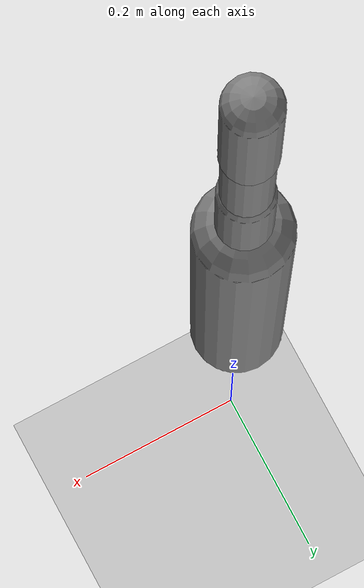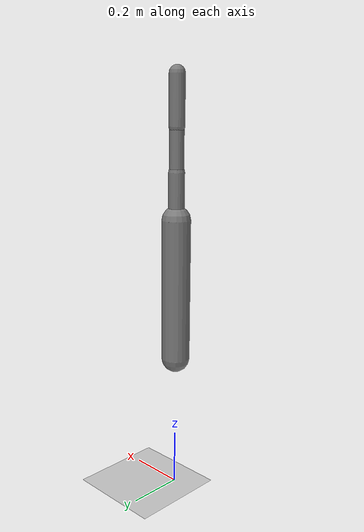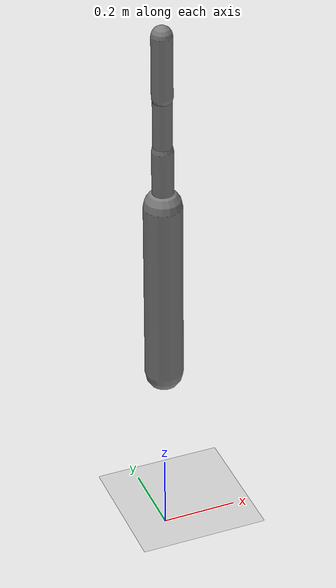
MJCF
<?xml version='1.0' encoding='UTF-8'?>
<mujoco model="RobotModel">
  <option gravity="0 0 -9.81" timestep="0.002" solver="CG" iterations="500" integrator="Euler"/>
  <worldbody>
    <geom name="Floor" type="plane" size="10 10 0.1" pos="0 0 0" rgba="0.8 0.8 0.8 1"/>
    <body name="Limb0" pos="0 0 0.5">
      <geom type="capsule" fromto="0 0 0 0 0 0.5" size="0.05" density="1000" contype="1" conaffinity="1"/>
      <body name="Limb0_2fefeddc" pos="0 0 0.5">
        <geom type="capsule" fromto="0 0 0 0 0 0.15961834900352945" size="0.02780730484840863" density="500.0" contype="1" conaffinity="1"/>
        <joint name="Joint_Limb0_Limb0_2fefeddc_0" type="hinge" axis="1 0 0" range="-60 60"/>
      </body>
      <body name="Limb1_2fefeddc" pos="0 0 0.5">
        <geom type="capsule" fromto="0 0 0 0 0 0.1460663717785399" size="0.022941172199634974" density="500.0" contype="1" conaffinity="1"/>
        <body name="Limb2_2fefeddc" pos="0 0 0.1460663717785399">
          <geom type="capsule" fromto="0 0 0 0 0 0.16123554749448613" size="0.0248969105764413" density="500.0" contype="1" conaffinity="1"/>
          <body name="Limb3_2fefeddc" pos="0 0 0.16123554749448613">
            <geom type="capsule" fromto="0 0 0 0 0 0.16606906149782635" size="0.027008186008663806" density="500.0" contype="1" conaffinity="1"/>
            <joint name="Joint_Limb2_2fefeddc_Limb3_2fefeddc_0" type="hinge" axis="1 0 0" range="-60 60"/>
          </body>
          <joint name="Joint_Limb1_2fefeddc_Limb2_2fefeddc_0" type="hinge" axis="0 1 0" range="-60 60"/>
        </body>
        <joint name="Joint_Limb0_Limb1_2fefeddc_0" type="hinge" axis="0 1 0" range="-60 60"/>
      </body>
    </body>
  </worldbody>
  <actuator>
    <position name="position_Actuator_Joint_Limb0_Limb0_2fefeddc_0" joint="Joint_Limb0_Limb0_2fefeddc_0" gear="1.0"/>
    <position name="position_Actuator_Joint_Limb0_Limb1_2fefeddc_0" joint="Joint_Limb0_Limb1_2fefeddc_0" gear="1.0"/>
    <position name="position_Actuator_Joint_Limb1_2fefeddc_Limb2_2fefeddc_0" joint="Joint_Limb1_2fefeddc_Limb2_2fefeddc_0" gear="1.0"/>
    <position name="position_Actuator_Joint_Limb2_2fefeddc_Limb3_2fefeddc_0" joint="Joint_Limb2_2fefeddc_Limb3_2fefeddc_0" gear="1.0"/>
  </actuator>
</mujoco>
